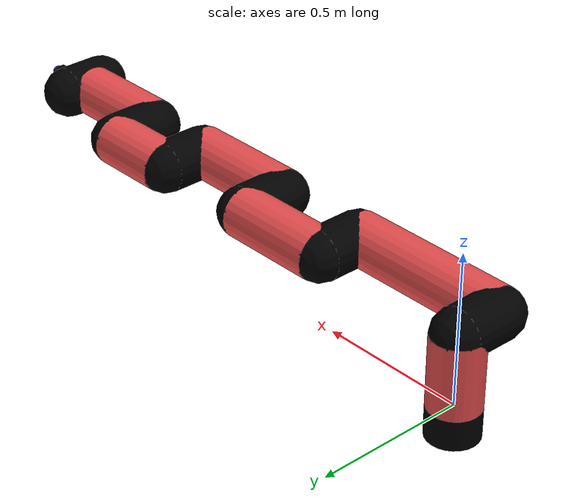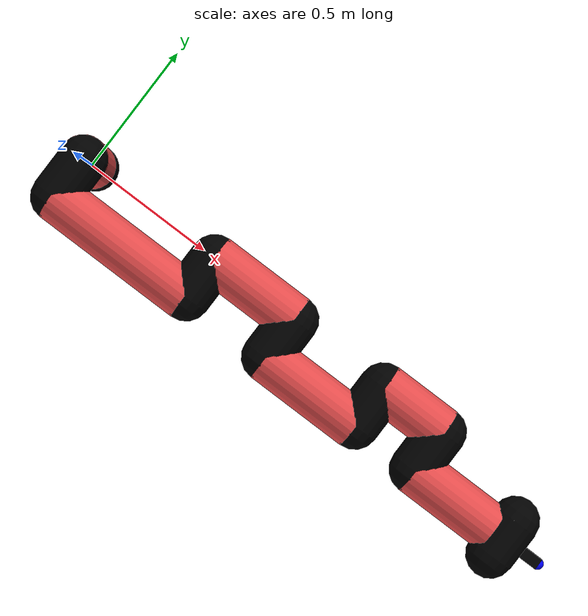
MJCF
<mujoco model="manipulator">
		<compiler angle="degree" coordinate="local" inertiafromgeom="auto" meshdir="meshes/"/>
		<option gravity="0 0 0" integrator="RK4" iterations="30" timestep="0.01"/>

		<default>
		<joint armature="1" limited="true" stiffness="10" damping="15" frictionloss="5.0"/>
		<geom conaffinity="1" condim="3" contype="1" friction=".5 .1 .1" margin="0.002"/>
		<motor ctrllimited="true"/>
		<position ctrllimited="true"/>
		</default>

		<asset>
		<texture builtin="gradient" height="100" rgb1="1.0 1.0 1.0" rgb2="1.0 1.0 1.0" type="skybox" width="100"/>
		<texture builtin="flat" height="32" name="arm_tex" rgb1="0.9 0.3 0.3" type="2d" width="32"/>
		<texture builtin="flat" height="32" name="gripper_tex" rgb1="0.0 0.0 0.0" type="cube" width="32"/>

		<material name="arm_mat" shininess="0.1" specular="0.1" texture="arm_tex"/>
		<material name="gripper_mat" shininess="1" specular="1" texture="gripper_tex"/>
		</asset>

		<worldbody>
		<light cutoff="45" diffuse=".8 .8 .8" dir="0 0.16 -1" directional="false" name="light" pos="0 -2.0 8.0" specular="0.3 0.3 0.3"/>

		<body name="base_link" pos="0 0 -0.1">
		<geom fromto="0 0 0 0 0 0.1" material="arm_mat" name="base_link" rgba="0.0 0.0 0.0 1" size="0.085" type="cylinder"/>
		</body>

		<body name="l1" pos="0 0 0">
<geom fromto="0 0 0 0 0 0.24" material="arm_mat" name="l1" rgba="0.9 0.3 0.3 1" size="0.085" type="cylinder"/>
<geom fromto="0 0 0.24 0 -0.16 0.24" material="arm_mat" name="l1_ex" rgba="0.0 0.0 0.0 1" size="0.085" type="capsule"/>
<joint axis="0 0 1" name="j1" pos="0 0 0" range="-90 90" damping="34.79" frictionloss="12.3"/>

<body name="l2" pos="0 -0.16 0.24">
<geom fromto="0 0 0 0.56 0 0" material="arm_mat" name="l2" rgba="0.9 0.3 0.3 1" size="0.085" type="cylinder"/>
<geom fromto="0.56 0 0 0.56 0.16 0" material="arm_mat" name="l2_ex" rgba="0.0 0.0 0.0 1" size="0.085" type="capsule"/>
<joint axis="0.0 1.0 0.0" name="j2" pos="0 0 0" range="-90 60" damping="36.28" frictionloss="9.23"/>

<body name="l3" pos="0.56 0.16 0">
<geom fromto="0 0 0 0.34 0 0" material="arm_mat" name="l3" rgba="0.9 0.3 0.3 1" size="0.085" type="cylinder"/>
<geom fromto="0.34 0 0 0.34 -0.16 0" material="arm_mat" name="l3_ex" rgba="0.0 0.0 0.0 1" size="0.085" type="capsule"/>
<joint axis="0.0 1.0 0.0" name="j3" pos="0 0 0" range="-30 60" damping="31.7" frictionloss="12.14"/>

<body name="l4" pos="0.34 -0.16 0">
<geom fromto="0 0 0 0.38 0 0" material="arm_mat" name="l4" rgba="0.9 0.3 0.3 1" size="0.085" type="cylinder"/>
<geom fromto="0.38 0 0 0.38 0.16 0" material="arm_mat" name="l4_ex" rgba="0.0 0.0 0.0 1" size="0.085" type="capsule"/>
<joint axis="0.0 1.0 0.0" name="j4" pos="0 0 0" range="-30 60" damping="31.28" frictionloss="8.06"/>

<body name="l5" pos="0.38 0.16 0">
<geom fromto="0 0 0 0.25 0 0" material="arm_mat" name="l5" rgba="0.9 0.3 0.3 1" size="0.085" type="cylinder"/>
<geom fromto="0.25 0 0 0.25 -0.16 0" material="arm_mat" name="l5_ex" rgba="0.0 0.0 0.0 1" size="0.085" type="capsule"/>
<joint axis="0.0 1.0 0.0" name="j5" pos="0 0 0" range="-30 60" damping="31.25" frictionloss="11.55"/>

<body name="l6" pos="0.25 -0.16 0">
<geom fromto="0 0 0 0.33 0 0" material="arm_mat" name="l6" rgba="0.9 0.3 0.3 1" size="0.085" type="cylinder"/>
<joint axis="0.0 1.0 0.0" name="j6" pos="0 0 0" range="-30 60" damping="33.91" frictionloss="9.09"/>

<body name="gripper" pos="0.33 0 0">
<geom fromto="0.05 -0.07 0 0.05 0.07 0" material="gripper_mat" name="gripper" rgba="0.0 0.0 0.0 1" size="0.085" type="capsule"/><joint axis="1 0 0" name="j7" pos="0 0 0" range="-90 90" damping="15" frictionloss="5.0"/><body name="finger" pos="0.1 0 0">
<geom fromto="0 0.0 0 0.1 0.0 0" material="gripper_mat" name="finger" rgba="0.0 0.0 0.0 1" size="0.020 0.06 0.06" type="box"/>
</body>
<site name="current" pos="0.2 0. 0.0" rgba="0. 0. 1.0 1" size="0.02" type="sphere"/>
</body>
</body>
</body>
</body>
</body>
</body>
</body>
</worldbody>
<actuator>
<motor ctrllimited="true" ctrlrange="-1.0 1.0" joint="j1" gear="70.97"/>
<motor ctrllimited="true" ctrlrange="-1.0 1.0" joint="j2" gear="89.66"/>
<motor ctrllimited="true" ctrlrange="-1.0 1.0" joint="j3" gear="99.04"/>
<motor ctrllimited="true" ctrlrange="-1.0 1.0" joint="j4" gear="68.03"/>
<motor ctrllimited="true" ctrlrange="-1.0 1.0" joint="j5" gear="58.5"/>
<motor ctrllimited="true" ctrlrange="-1.0 1.0" joint="j6" gear="80.72"/>
<motor ctrllimited="true" ctrlrange="-1.0 1.0" joint="j7" gear="80"/>
</actuator>
</mujoco>
